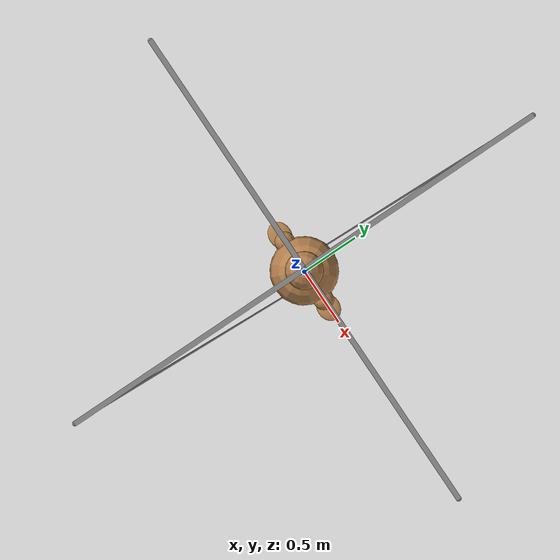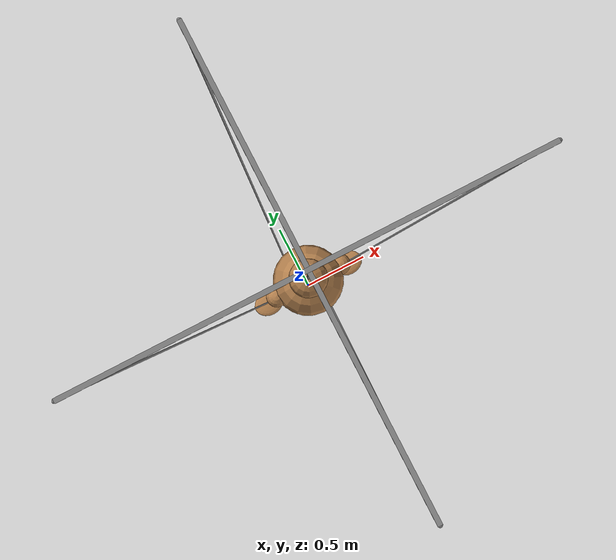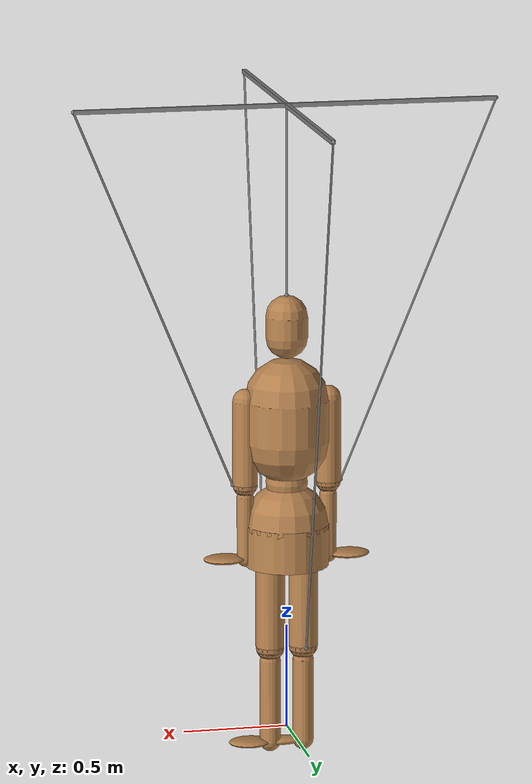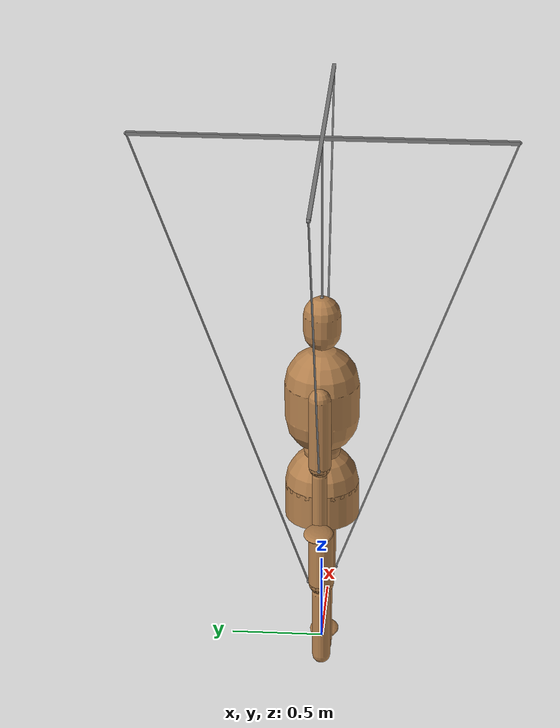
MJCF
<mujoco model="puppet">
  <asset>
    <texture type="skybox" builtin="gradient" rgb1="1 1 1" rgb2=".6 .8 1" width="256" height="256"/>
    <texture file="darkWood.png" name="dark-wood"/>
    <material name="wood" reflectance="1.0" texture="dark-wood" texuniform="true"/>
  </asset>

  <option gravity="0 0 -9.81"/>

  <worldbody>
    <light pos="0 1 1" dir="0 -1 -1" diffuse="1 1 1"/>
    <body name="control1" pos="0 0 3">
      <geom type="box" size="1 0.01 0.01"/>
      <site name="center" pos="0 0 0" size="0.01"/>
      <site name="right" pos="1 0 0" size="0.01"/>
      <site name="left" pos="-1 0 0" size="0.01"/>

      <body name="control2" pos="0 0 0">
        <joint type="hinge" axis="0 0 1"/>
        <geom type="box" size="0.01 1 0.01"/>
        <site name="front" pos="0 1 0" size="0.01"/>
        <site name="back" pos="0 -1 0" size="0.01"/>
      </body>
    </body>

    <body name="body" pos="0 0 1">
      <!-- body definition -->
      <body name="head" pos="0 0 1">
        <geom name="head" material="wood" type="capsule" size="0.1" fromto="0 0 0  0 0 -0.1"/>
        <site name="head_top" pos="0 0 0.1" size="0.01"/>

        <body name="torso" pos="0 0 -0.4">
          <joint axis="0 0 1"/>
          <joint axis="1 0 0"/>
          <geom name="torso_geom" material="wood" type="capsule" size="0.2" fromto="0 0 0  0 0 -0.2"/>
          <site name="end2" pos="0 0 0.2" size="0.01"/>

          <body name="left_arm" pos="-0.2 0 0">
            <joint type="ball"/>
            <geom type="capsule" material="wood" size="0.06" fromto="0 0 0  0 0 -0.4"/>

            <body name="left_elbow_bone" pos="0 0 -0.4">
              <joint type="ball" name="left_elbow_joint"/>
              <geom type="sphere" material="wood" size="0.06"/>
              <site name="left_elbow" pos="-0.06 0 0" size="0.01"/>

              <body pos="0 0 -0.06">
                <joint axis="0 0 1"/>
                <joint axis="1 0 0"/>
                <joint axis="0 1 0"/>
                <geom type="capsule" material="wood" size="0.04" fromto="0 0 0  0 0 -0.3"/>

                <body pos="0 0 -0.3">
                  <joint axis="0 1 0"/>
                  <joint axis="1 0 0"/>
                  <geom pos="-0.1 0 0" material="wood" size="0.1 0.08 0.02" type="ellipsoid"/>
                </body>
              </body>
            </body>
          </body>

          <body name="right_arm" pos="0.2 0 0">
            <joint type="ball"/>
            <geom type="capsule" material="wood" size="0.06" fromto="0 0 0  0 0 -0.4"/>

            <body name="right_elbow_bone" pos="0 0 -0.4">
              <joint type="ball" name="right_elbow_joint"/>
              <geom type="sphere" material="wood" size="0.06"/>
              <site name="right_elbow" pos="0.06 0 0" size="0.01"/>

                <body pos="0 0 -0.06">
                <joint axis="0 0 1"/>
                <joint axis="1 0 0"/>
                <joint axis="0 1 0"/>
                <geom type="capsule" material="wood" size="0.04" fromto="0 0 0  0 0 -0.3"/>

                    <body pos="0 0 -0.3">
                        <joint axis="0 1 0"/>
                        <joint axis="1 0 0"/>
                        <geom pos="0.1 0 0" material="wood" size="0.1 0.08 0.02" type="ellipsoid"/>
                    </body>
                </body>
            </body>
          </body>

          <body name="waist" pos="0 0 -0.4">
            <joint axis="0 0 1"/>
            <joint axis="1 0 0"/>
            <geom type="sphere" material="wood" size="0.1"/>

            <body name="pelvis" pos="0 0 -0.2">
              <joint axis="0 0 1"/>
              <joint axis="1 0 0"/>
              <geom type="capsule" material="wood" size="0.2" fromto="0 0 0  0 0 -0.02"/>

              <body name="pelvis_bone" pos="0 0 -0.1">
                <joint axis="0 0 1"/>
                <joint axis="1 0 0"/>
                <geom type="cylinder" material="wood" size="0.2 0.1"/>
                <site name="left1" pos="-0.08 0 -0.1" size="0.01"/>
                <site name="right1" pos="0.08 0 -0.1" size="0.01"/>

                <body name="left_leg" pos="-0.08 0 -0.1">
                  <joint type="ball"/>
                  <geom type="capsule" material="wood" size="0.07" fromto="0 0 0  0 0 -0.4"/>

                  <body name="left_knee_bone" pos="0 0 -0.4">
                    <joint type="ball" name="left_knee_joint"/>
                    <geom type="sphere" material="wood" size="0.07"/>
                    <site name="left_knee" pos="0 0.07 0" size="0.01"/>

                    <body pos="0 0 -0.07">
                        <joint axis="0 0 1"/>
                        <joint axis="1 0 0"/>
                        <geom type="capsule" material="wood" size="0.05" fromto="0 0 0  0 0 -0.4"/>

                        <body pos="0 0 -0.4">
                        <joint axis="0 1 0"/>
                        <joint axis="1 0 0"/>
                        <geom pos="0.1 0 0" material="wood" size="0.1 0.05 0.02" type="ellipsoid"/>
                        </body>
                    </body>
                  </body>
                </body>

                <body name="right_leg" pos="0.08 0 -0.1">
                  <joint type="ball"/>
                  <geom type="capsule" material="wood" size="0.07" fromto="0 0 0  0 0 -0.4"/>

                  <body name="right_knee_bone" pos="0 0 -0.4">
                    <joint type="ball" name="right_knee_joint"/>
                    <geom type="sphere" material="wood" size="0.07"/>
                    <site name="right_knee" pos="0 -0.07 0" size="0.01"/>

                    <body pos="0 0 -0.07">
                        <joint axis="0 0 1"/>
                        <joint axis="1 0 0"/>
                        <geom type="capsule" material="wood" size="0.05" fromto="0 0 0  0 0 -0.4"/>

                        <body pos="0 0 -0.4">
                        <joint axis="0 1 0"/>
                        <joint axis="1 0 0"/>
                        <geom pos="0.1 0 0" material="wood" size="0.1 0.08 0.02" type="ellipsoid"/>
                        </body>
                    </body>
                  </body>
                </body>
              </body>
            </body>
          </body>
        </body>
      </body>
    </body>
  </worldbody>
  <tendon>
    <spatial limited="true" range="0 .1" width="0.005">
      <site site="center"/>
      <site site="head_top"/>
    </spatial>
    <spatial limited="true" range="0 2" width="0.005">
      <site site="left"/>
      <site site="left_elbow"/>
    </spatial>
    <spatial limited="true" range="0 2" width="0.005">
      <site site="right"/>
      <site site="right_elbow"/>
    </spatial>
    <spatial limited="true" range="0 3" width="0.005">
      <site site="front"/>
      <site site="left_knee"/>
    </spatial>
    <spatial limited="true" range="0 3" width="0.005">
      <site site="back"/>
      <site site="right_knee"/>
    </spatial>
  </tendon>
  <actuator>
    <!-- Actuator for the left elbow joint -->
    <velocity name="left elbow servo" joint="left_elbow_joint" kv="10"/>
    <!-- Actuator for the right elbow joint -->
    <velocity name="right elbow servo" joint="right_elbow_joint" kv="10"/>
    <!-- Actuator for the left knee joint -->
    <velocity name="left knee servo" joint="left_knee_joint" kv="10"/>
    <!-- Actuator for the right knee joint -->
    <velocity name="right knee servo" joint="right_knee_joint" kv="10"/>
    <position name="tendon_length_control" site="front" kp="100"/>
  </actuator>
</mujoco>
